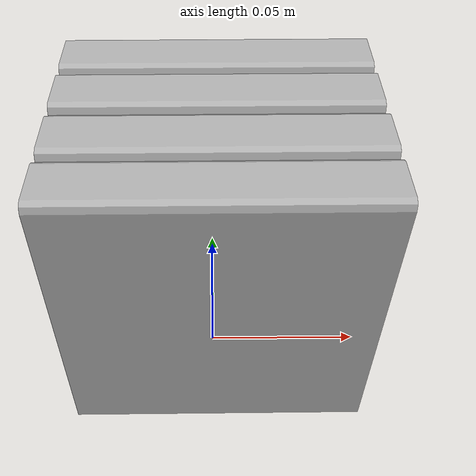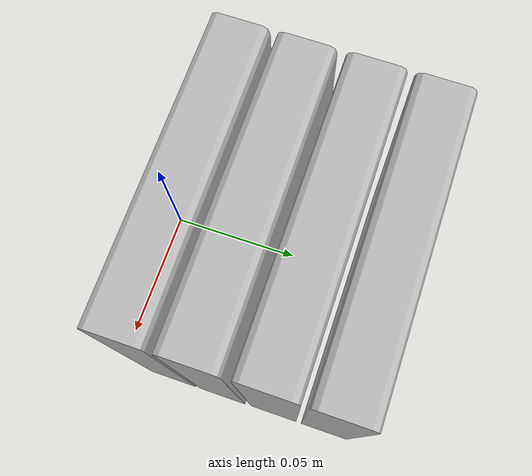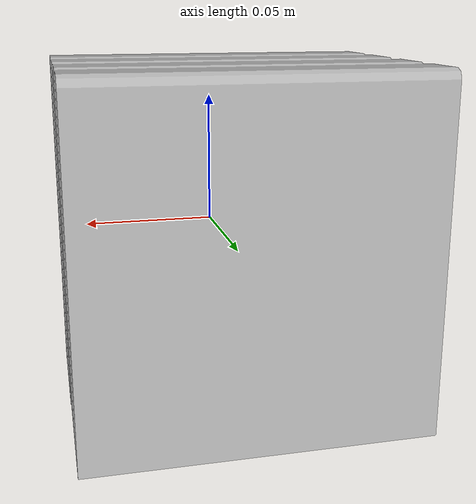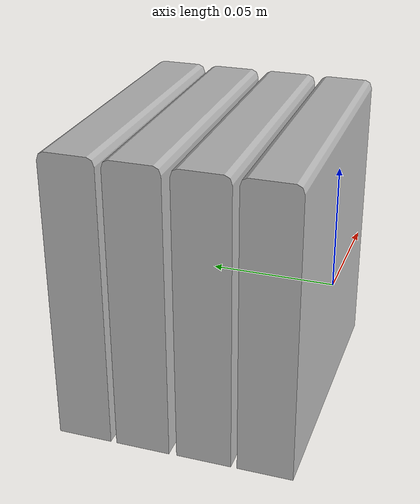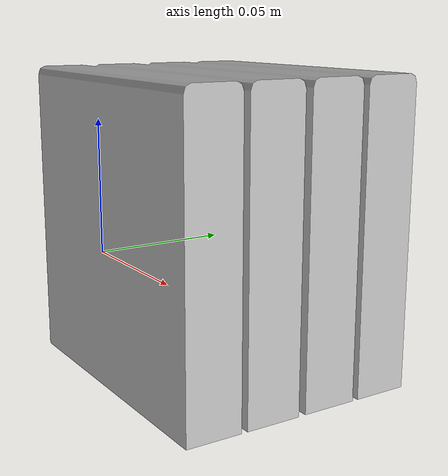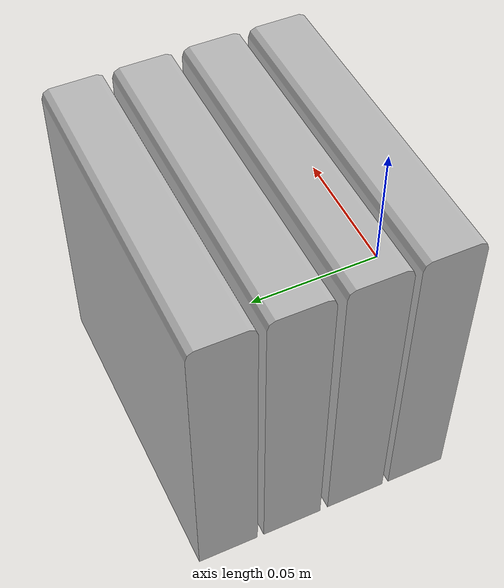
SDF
<?xml version="1.0" ?>
<sdf version="1.4">
  <model name="shelf3_book3_h1">
    <link name="body">
      <pose>0 0 0 0 0 0</pose>
      <inertial>
        <pose>   0.002000   0.048500   0.005454 0 0 0</pose>
        <mass>0.5</mass>
        <inertia>
          <ixx>0.01</ixx>
          <ixy>0</ixy>
          <ixz>0</ixz>
          <iyy>0.01</iyy>
          <iyz>0</iyz>
          <izz>0.01</izz>
        </inertia>
      </inertial>
      <collision name="collision">
        <geometry>
          <mesh>
            <uri>model://bookshelf/shelf3_items/book3_h1/book3_h1.dae</uri>
          </mesh>
        </geometry>
      </collision>
      <visual name="visual">
        <geometry>
          <mesh>
            <uri>model://bookshelf/shelf3_items/book3_h1/book3_h1.dae</uri>
          </mesh>
        </geometry>
      </visual>
    </link>
  </model>
</sdf>
